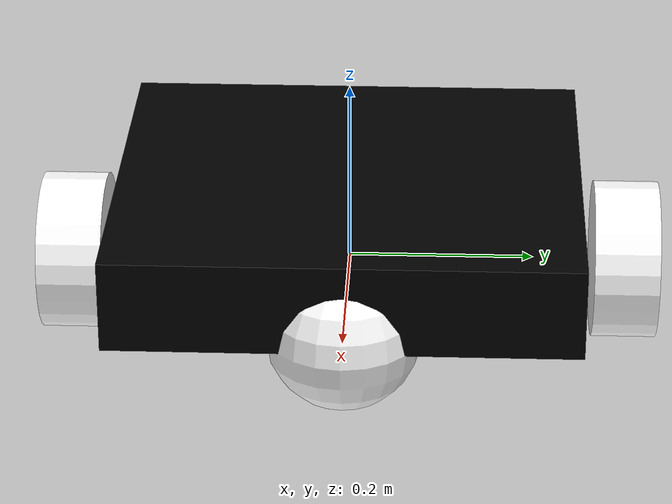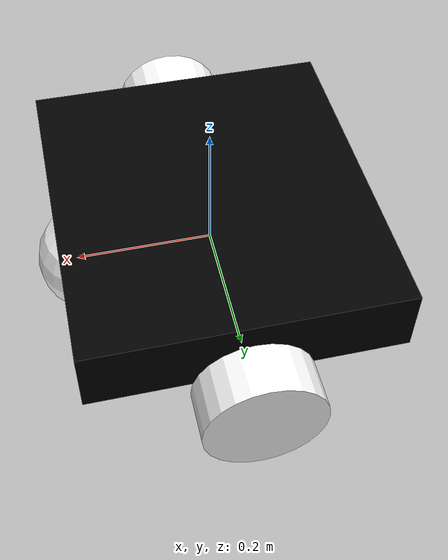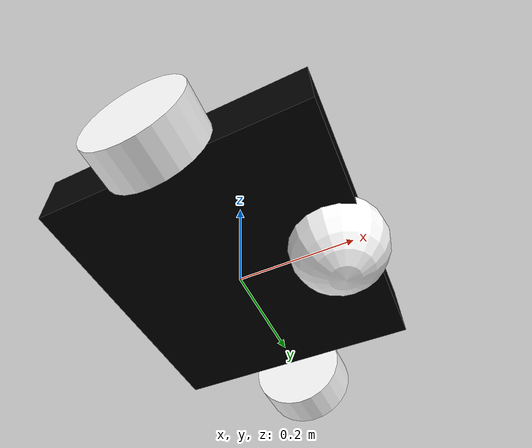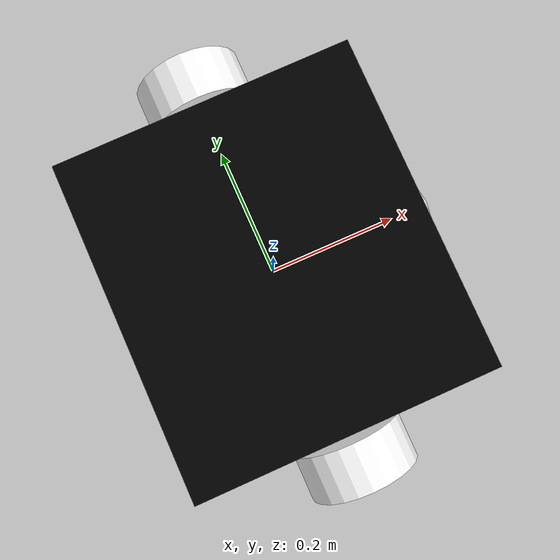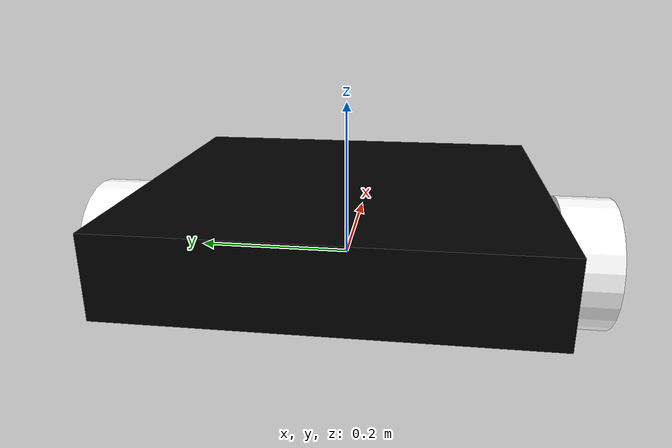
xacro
<?xml version="1.0"?>
<robot xmlns:xacro="http://www.ros.org/wiki/xacro">

<xacro:include filename="inertial_macros.xacro" />

<material name="black">
<color rgba="0 0 0 1"/>
</material>
<material name="blue">
<color rgba="0.2 0.2 1 1"/>
</material>
<material name="white">
<color rgba="1 1 1 1"/>
</material>

<!-- BASE LINK -->

<link name="base_link">
</link>

<!-- NAVI LINK -->
<joint name="navi_joint" type="fixed">
<parent link="base_link"/>
<child link="navi"/>
<origin xyz="-0.225 0 0"/>
</joint>

<link name="navi">
   <visual>
        <origin xyz="0.225 0 0.05"/>
        <material name="black"/>
        <geometry>
            <box size="0.45 0.5 0.1"/>
        </geometry>
   </visual>
   <collision>
        <origin xyz="0.225 0 0.05"/>
        <geometry>
            <box size="0.45 0.5 0.1"/>
        </geometry>
   </collision>
   <xacro:inertial_box mass="15" x="0.45" y="0.5" z="0.1">
    <origin xyz="0.225 0 0.05" rpy="0 0 0"/>
   </xacro:inertial_box>
</link>

<!-- LEFT WHEEL LINK -->
<joint name="left_wheel_joint" type="continuous">
    <parent link="base_link"/>
    <child link="left_wheel"/>
    <origin xyz="0 0.30 0" rpy="-${pi/2} 0 0"/>
    <axis xyz="0 0 1"/>

</joint>

<link name="left_wheel">
    <visual>
        <geometry>
            <cylinder radius="0.085" length="0.07"/>
        </geometry>
        <material name="white"/>
    </visual>
    <collision>
        <geometry>
            <cylinder radius="0.085" length="0.07"/>
        </geometry>
    </collision>
    <xacro:inertial_cylinder mass="4" length="0.07" radius="0.085">
        <origin xyz="0 0 0" rpy="0 0 0"/>
    </xacro:inertial_cylinder>
</link>

<!-- RIGHT WHEEL LINK -->
<joint name="right_wheel_joint" type="continuous">
    <parent link="base_link"/>
    <child link="right_wheel"/>
    <origin xyz="0 -0.30 0" rpy="${pi/2} 0 0"/>
    <axis xyz="0 0 -1"/>

</joint>

<link name="right_wheel">
    <visual>
        <geometry>
            <cylinder radius="0.085" length="0.07"/>
        </geometry>
        <material name="white"/>
    </visual>

    <collision>
        <geometry>
            <cylinder radius="0.085" length="0.07"/>
        </geometry>
    </collision>
    <xacro:inertial_cylinder mass="4" length="0.07" radius="0.085">
        <origin xyz="0 0 0" rpy="0 0 0"/>
    </xacro:inertial_cylinder>
</link>

<!-- CASTER WHEEL LINK -->
<joint name="caster_wheel_joint" type="fixed">
    <parent link="navi"/>
    <child link="caster_wheel"/>
    <origin xyz="0.40 0 0"/>
</joint>

<link name="caster_wheel">
    <visual>
        <geometry>
            <sphere radius="0.0825"/>
        </geometry>
        <material name="white"/>
    </visual>
    <collision>
        <geometry>
            <sphere radius="0.0825"/>
        </geometry>
    </collision>
    <xacro:inertial_sphere mass="0.2" radius="0.085">
        <origin xyz="0 0 0" rpy="0 0 0"/>
    </xacro:inertial_sphere>
</link>

</robot>
